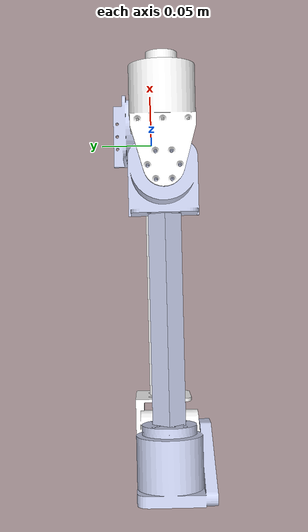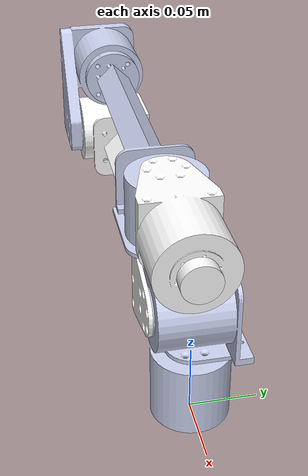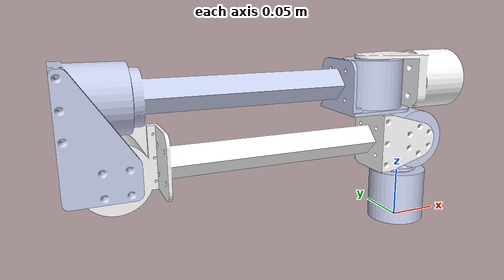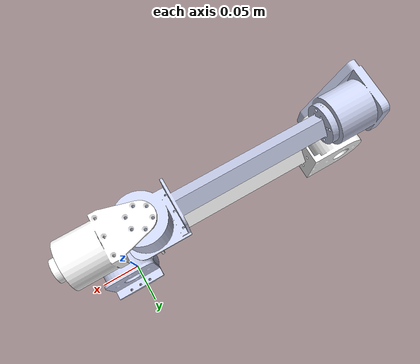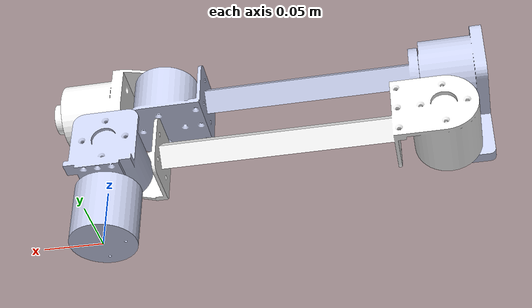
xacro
<?xml version="1.0"?>
<robot xmlns:xacro="http://www.ros.org/wiki/xacro" name="arm_robot">
    <xacro:arg name="initial_positions_file" default="initial_positions.yaml" />

    <!-- Import arm_robot urdf file -->
    <xacro:include filename="$(find arm_robot)/urdf/arm_robot.urdf" />

    <!-- Import control_xacro -->
    <xacro:include filename="arm_robot.ros2_control.xacro" />

    <xacro:arm_robot_ros2_control name="FakeSystem" initial_positions_file="$(arg initial_positions_file)"/>

</robot>

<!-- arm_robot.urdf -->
<robot
  name="arm_robot">
  <link
    name="base_link">
    <inertial>
      <origin
        xyz="4.3658E-17 2.0209E-18 0.026306"
        rpy="0 0 0" />
      <mass
        value="0.134" />
      <inertia
        ixx="5.797E-05"
        ixy="4.039E-24"
        ixz="-4.9245E-21"
        iyy="5.797E-05"
        iyz="2.6382E-22"
        izz="5.422E-05" />
    </inertial>
    <visual>
      <origin
        xyz="0 0 0"
        rpy="0 0 0" />
      <geometry>
        <mesh
          filename="package://arm_robot/meshes/base_link.STL" />
      </geometry>
      <material
        name="">
        <color
          rgba="0.79216 0.81961 0.93333 1" />
      </material>
    </visual>
    <collision>
      <origin
        xyz="0 0 0"
        rpy="0 0 0" />
      <geometry>
        <mesh
          filename="package://arm_robot/meshes/base_link.STL" />
      </geometry>
    </collision>
  </link>
  <link
    name="link_6">
    <inertial>
      <origin
        xyz="1.4316E-17 -0.00035171 0.03104"
        rpy="0 0 0" />
      <mass
        value="0.15154" />
      <inertia
        ixx="6.4227E-05"
        ixy="1.555E-21"
        ixz="8.6655E-22"
        iyy="6.3444E-05"
        iyz="3.8382E-07"
        izz="6.3559E-05" />
    </inertial>
    <visual>
      <origin
        xyz="0 0 0"
        rpy="0 0 0" />
      <geometry>
        <mesh
          filename="package://arm_robot/meshes/link_6.STL" />
      </geometry>
      <material
        name="">
        <color
          rgba="0.79216 0.81961 0.93333 1" />
      </material>
    </visual>
    <collision>
      <origin
        xyz="0 0 0"
        rpy="0 0 0" />
      <geometry>
        <mesh
          filename="package://arm_robot/meshes/link_6.STL" />
      </geometry>
    </collision>
  </link>
  <joint
    name="joint_6"
    type="revolute">
    <origin
      xyz="0 0 0.0563"
      rpy="0 0 0" />
    <parent
      link="base_link" />
    <child
      link="link_6" />
    <axis
      xyz="0 0 1" />
    <limit
      lower="-3"
      upper="3"
      effort="1"
      velocity="1" />
    <dynamics
      damping="1"
      friction="1" />
    <safety_controller
      soft_upper_limit="3"
      soft_lower_limit="-3"
      k_position="1"
      k_velocity="1" />
  </joint>
  <link
    name="link_5">
    <inertial>
      <origin
        xyz="0.23253 5.5511E-17 -0.023931"
        rpy="0 0 0" />
      <mass
        value="0.21404" />
      <inertia
        ixx="6.3317E-05"
        ixy="-1.8384E-20"
        ixz="2.4161E-10"
        iyy="0.00032731"
        iyz="-2.1399E-20"
        izz="0.00032357" />
    </inertial>
    <visual>
      <origin
        xyz="0 0 0"
        rpy="0 0 0" />
      <geometry>
        <mesh
          filename="package://arm_robot/meshes/link_5.STL" />
      </geometry>
      <material
        name="">
        <color
          rgba="1 1 1 1" />
      </material>
    </visual>
    <collision>
      <origin
        xyz="0 0 0"
        rpy="0 0 0" />
      <geometry>
        <mesh
          filename="package://arm_robot/meshes/link_5.STL" />
      </geometry>
    </collision>
  </link>
  <joint
    name="joint_5"
    type="revolute">
    <origin
      xyz="0 -0.033175 0.033"
      rpy="-1.5708 0 -3.1416" />
    <parent
      link="link_6" />
    <child
      link="link_5" />
    <axis
      xyz="0 0 1" />
    <limit
      lower="-3"
      upper="3"
      effort="1"
      velocity="1" />
    <dynamics
      damping="1"
      friction="1" />
    <safety_controller
      soft_upper_limit="3"
      soft_lower_limit="-3"
      k_position="1"
      k_velocity="1" />
  </joint>
  <link
    name="link_4">
    <inertial>
      <origin
        xyz="0.012508 -0.050154 -0.031376"
        rpy="0 0 0" />
      <mass
        value="0.0001863" />
      <inertia
        ixx="8.9072E-08"
        ixy="5.9674E-09"
        ixz="-6.2698E-13"
        iyy="6.1154E-08"
        iyz="1.029E-13"
        izz="8.6192E-08" />
    </inertial>
    <visual>
      <origin
        xyz="0 0 0"
        rpy="0 0 0" />
      <geometry>
        <mesh
          filename="package://arm_robot/meshes/link_4.STL" />
      </geometry>
      <material
        name="">
        <color
          rgba="0.79216 0.81961 0.93333 1" />
      </material>
    </visual>
    <collision>
      <origin
        xyz="0 0 0"
        rpy="0 0 0" />
      <geometry>
        <mesh
          filename="package://arm_robot/meshes/link_4.STL" />
      </geometry>
    </collision>
  </link>
  <joint
    name="joint_4"
    type="revolute">
    <origin
      xyz="0.286 0 0.0143"
      rpy="0 0 0" />
    <parent
      link="link_5" />
    <child
      link="link_4" />
    <axis
      xyz="0 0 -1" />
    <limit
      lower="-3"
      upper="3"
      effort="1"
      velocity="1" />
    <dynamics
      damping="1"
      friction="1" />
    <safety_controller
      soft_upper_limit="3"
      soft_lower_limit="-3"
      k_position="1"
      k_velocity="1" />
  </joint>
  <link
    name="link_3">
    <inertial>
      <origin
        xyz="-7.8063E-17 -0.0031529 0.097839"
        rpy="0 0 0" />
      <mass
        value="0.09211" />
      <inertia
        ixx="0.00020224"
        ixy="-7.9455E-16"
        ixz="1.0827E-19"
        iyy="0.00020593"
        iyz="1.2343E-09"
        izz="1.0799E-05" />
    </inertial>
    <visual>
      <origin
        xyz="0 0 0"
        rpy="0 0 0" />
      <geometry>
        <mesh
          filename="package://arm_robot/meshes/link_3.STL" />
      </geometry>
      <material
        name="">
        <color
          rgba="0.79216 0.81961 0.93333 1" />
      </material>
    </visual>
    <collision>
      <origin
        xyz="0 0 0"
        rpy="0 0 0" />
      <geometry>
        <mesh
          filename="package://arm_robot/meshes/link_3.STL" />
      </geometry>
    </collision>
  </link>
  <joint
    name="joint_3"
    type="revolute">
    <origin
      xyz="-0.0255 -0.057 -0.0385"
      rpy="3.1416 1.5708 0" />
    <parent
      link="link_4" />
    <child
      link="link_3" />
    <axis
      xyz="0 0 -1" />
    <limit
      lower="-3"
      upper="3"
      effort="1"
      velocity="1" />
    <dynamics
      damping="1"
      friction="1" />
    <safety_controller
      soft_upper_limit="3"
      soft_lower_limit="-3"
      k_position="1"
      k_velocity="1" />
  </joint>
  <link
    name="link_2">
    <inertial>
      <origin
        xyz="0.058734 -5.7246E-17 -0.024752"
        rpy="0 0 0" />
      <mass
        value="0.00014694" />
      <inertia
        ixx="5.8114E-08"
        ixy="3.9873E-24"
        ixz="-6.9618E-13"
        iyy="4.9317E-08"
        iyz="1.967E-24"
        izz="5.2432E-08" />
    </inertial>
    <visual>
      <origin
        xyz="0 0 0"
        rpy="0 0 0" />
      <geometry>
        <mesh
          filename="package://arm_robot/meshes/link_2.STL" />
      </geometry>
      <material
        name="">
        <color
          rgba="1 1 1 1" />
      </material>
    </visual>
    <collision>
      <origin
        xyz="0 0 0"
        rpy="0 0 0" />
      <geometry>
        <mesh
          filename="package://arm_robot/meshes/link_2.STL" />
      </geometry>
    </collision>
  </link>
  <joint
    name="joint_2"
    type="revolute">
    <origin
      xyz="0 0.026 0.2185"
      rpy="-1.5708 -1.5708 0" />
    <parent
      link="link_3" />
    <child
      link="link_2" />
    <axis
      xyz="0 0 -1" />
    <limit
      lower="-3"
      upper="3"
      effort="1"
      velocity="1" />
    <dynamics
      damping="1"
      friction="1" />
    <safety_controller
      soft_upper_limit="3"
      soft_lower_limit="-3"
      k_position="1"
      k_velocity="1" />
  </joint>
  <link
    name="link_1">
    <inertial>
      <origin
        xyz="4.8572E-17 2.7756E-17 0.005"
        rpy="0 0 0" />
      <mass
        value="0.0057256" />
      <inertia
        ixx="3.0858E-07"
        ixy="4.4116E-24"
        ixz="3.2362E-22"
        iyy="3.0858E-07"
        iyz="-4.3305E-24"
        izz="5.2174E-07" />
    </inertial>
    <visual>
      <origin
        xyz="0 0 0"
        rpy="0 0 0" />
      <geometry>
        <mesh
          filename="package://arm_robot/meshes/link_1.STL" />
      </geometry>
      <material
        name="">
        <color
          rgba="1 1 1 1" />
      </material>
    </visual>
    <collision>
      <origin
        xyz="0 0 0"
        rpy="0 0 0" />
      <geometry>
        <mesh
          filename="package://arm_robot/meshes/link_1.STL" />
      </geometry>
    </collision>
  </link>
  <joint
    name="joint_1"
    type="revolute">
    <origin
      xyz="0.089 0 -0.026"
      rpy="1.5708 0 1.5708" />
    <parent
      link="link_2" />
    <child
      link="link_1" />
    <axis
      xyz="0 0 -1" />
    <limit
      lower="-3"
      upper="3"
      effort="1"
      velocity="1" />
    <dynamics
      damping="1"
      friction="1" />
    <safety_controller
      soft_upper_limit="3"
      soft_lower_limit="-3"
      k_position="1"
      k_velocity="1" />
  </joint>
</robot>
